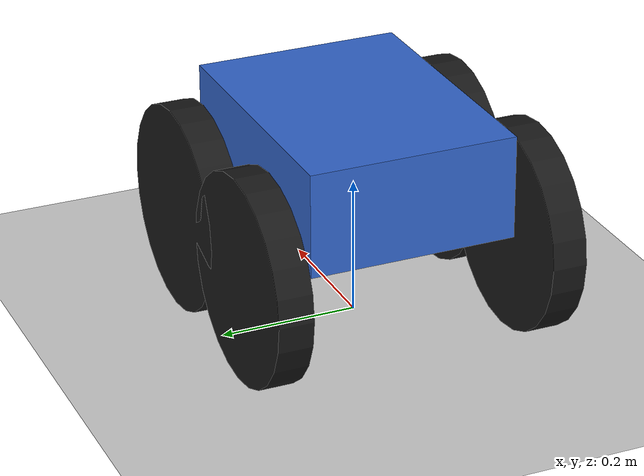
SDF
<sdf version="1.9">
 <world name="walk_across_then_approach">
  <include><uri>model://rover</uri><pose>0 0 0.15 0 0 0</pose></include>
  <physics type="ode">
   <max_step_size>0.004</max_step_size>
   <real_time_factor>1.0</real_time_factor>
   <real_time_update_rate>250</real_time_update_rate>
  </physics>
  <plugin name="gz::sim::systems::Physics" filename="gz-sim-physics-system"/>
  <plugin name="gz::sim::systems::UserCommands" filename="gz-sim-user-commands-system"/>
  <plugin name="gz::sim::systems::SceneBroadcaster" filename="gz-sim-scene-broadcaster-system"/>
  <plugin name="gz::sim::systems::Contact" filename="gz-sim-contact-system"/>
  <plugin name="gz::sim::systems::Sensors" filename="gz-sim-sensors-system">
   <render_engine>ogre2</render_engine>
  </plugin>
  <gravity>0 0 -9.8</gravity>
  <scene>
   <grid>false</grid>
   <ambient>0.4 0.4 0.4 1</ambient>
   <background>0.7 0.7 0.7 1</background>
   <shadows>true</shadows>
  </scene>
  <model name="ground_plane">
   <static>true</static>
   <link name="link">
    <collision name="collision">
     <geometry><plane><normal>0 0 1</normal><size>1 1</size></plane></geometry>
    </collision>
    <visual name="visual">
     <geometry><plane><normal>0 0 1</normal><size>500 500</size></plane></geometry>
     <material>
      <ambient>0.8 0.8 0.8 1</ambient>
      <diffuse>0.8 0.8 0.8 1</diffuse>
      <specular>0.8 0.8 0.8 1</specular>
     </material>
    </visual>
    <inertial>
     <mass>1</mass>
     <inertia><ixx>1</ixx><ixy>0</ixy><ixz>0</ixz><iyy>1</iyy><iyz>0</iyz><izz>1</izz></inertia>
    </inertial>
   </link>
  </model>
  <light name="sunUTC" type="directional">
   <pose>0 0 500 0 0 0</pose>
   <intensity>1</intensity>
   <direction>0.001 0.625 -0.78</direction>
   <diffuse>0.904 0.904 0.904 1</diffuse>
   <specular>0.271 0.271 0.271 1</specular>
   <attenuation><range>2000</range><linear>0</linear><constant>1</constant><quadratic>0</quadratic></attenuation>
   <spot><inner_angle>0</inner_angle><outer_angle>0</outer_angle><falloff>0</falloff></spot>
  </light>
  <spherical_coordinates>
   <surface_model>EARTH_WGS84</surface_model>
   <world_frame_orientation>ENU</world_frame_orientation>
   <latitude_deg>47.397971057728974</latitude_deg>
   <longitude_deg>8.546163739800146</longitude_deg>
   <elevation>0</elevation>
  </spherical_coordinates>
 </world>
</sdf>

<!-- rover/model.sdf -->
<sdf version="1.9">
  <model name="rover">
    <pose>0 0 0.15 0 0 0</pose>
    <self_collide>false</self_collide>

    <link name="chassis">
      <pose>0 0 0.10 0 0 0</pose>
      <inertial>
        <mass>5.0</mass>
        <inertia>
          <ixx>0.05</ixx><ixy>0</ixy><ixz>0</ixz>
          <iyy>0.10</iyy><iyz>0</iyz>
          <izz>0.12</izz>
        </inertia>
      </inertial>
      <visual name="visual">
        <geometry><box><size>0.40 0.30 0.15</size></box></geometry>
        <material>
          <ambient>0.2 0.4 0.8 1</ambient>
          <diffuse>0.2 0.4 0.8 1</diffuse>
        </material>
      </visual>
      <collision name="collision">
        <geometry><box><size>0.40 0.30 0.15</size></box></geometry>
      </collision>
    </link>

    <link name="camera_link">
      <pose>0.20 0 0.20 0 0 0</pose>
      <inertial><mass>0.01</mass>
        <inertia><ixx>1e-5</ixx><ixy>0</ixy><ixz>0</ixz>
                 <iyy>1e-5</iyy><iyz>0</iyz>
                 <izz>1e-5</izz></inertia>
      </inertial>
      <sensor name="camera" type="camera">
        <topic>/camera</topic>
        <gz_frame_id>camera_link</gz_frame_id>
        <pose>0 0 0 0 0 0</pose>
        <camera>
          <horizontal_fov>1.152</horizontal_fov>
          <image><width>1280</width><height>720</height></image>
          <clip><near>0.1</near><far>3000</far></clip>
        </camera>
        <always_on>1</always_on>
        <update_rate>30</update_rate>
        <visualize>true</visualize>
      </sensor>
    </link>
    <joint name="camera_joint" type="fixed">
      <parent>chassis</parent>
      <child>camera_link</child>
    </joint>

    <link name="left_wheel">
      <pose>0.12 0.20 0 -1.5708 0 0</pose>
      <inertial><mass>0.5</mass>
        <inertia><ixx>0.001</ixx><ixy>0</ixy><ixz>0</ixz>
                 <iyy>0.001</iyy><iyz>0</iyz>
                 <izz>0.001</izz></inertia>
      </inertial>
      <visual name="visual">
        <geometry><cylinder><radius>0.15</radius><length>0.05</length></cylinder></geometry>
        <material><ambient>0.1 0.1 0.1 1</ambient><diffuse>0.1 0.1 0.1 1</diffuse></material>
      </visual>
      <collision name="collision">
        <geometry><cylinder><radius>0.15</radius><length>0.05</length></cylinder></geometry>
        <surface><friction><ode><mu>1.0</mu><mu2>1.0</mu2></ode></friction></surface>
      </collision>
    </link>
    <link name="right_wheel">
      <pose>0.12 -0.20 0 -1.5708 0 0</pose>
      <inertial><mass>0.5</mass>
        <inertia><ixx>0.001</ixx><ixy>0</ixy><ixz>0</ixz>
                 <iyy>0.001</iyy><iyz>0</iyz>
                 <izz>0.001</izz></inertia>
      </inertial>
      <visual name="visual">
        <geometry><cylinder><radius>0.15</radius><length>0.05</length></cylinder></geometry>
        <material><ambient>0.1 0.1 0.1 1</ambient><diffuse>0.1 0.1 0.1 1</diffuse></material>
      </visual>
      <collision name="collision">
        <geometry><cylinder><radius>0.15</radius><length>0.05</length></cylinder></geometry>
        <surface><friction><ode><mu>1.0</mu><mu2>1.0</mu2></ode></friction></surface>
      </collision>
    </link>

    <link name="left_rear_wheel">
      <pose>-0.12 0.20 0 -1.5708 0 0</pose>
      <inertial><mass>0.5</mass>
        <inertia><ixx>0.001</ixx><ixy>0</ixy><ixz>0</ixz>
                 <iyy>0.001</iyy><iyz>0</iyz>
                 <izz>0.001</izz></inertia>
      </inertial>
      <visual name="visual">
        <geometry><cylinder><radius>0.15</radius><length>0.05</length></cylinder></geometry>
        <material><ambient>0.1 0.1 0.1 1</ambient><diffuse>0.1 0.1 0.1 1</diffuse></material>
      </visual>
      <collision name="collision">
        <geometry><cylinder><radius>0.15</radius><length>0.05</length></cylinder></geometry>
        <surface><friction><ode><mu>1.0</mu><mu2>0.2</mu2></ode></friction></surface>
      </collision>
    </link>
    <link name="right_rear_wheel">
      <pose>-0.12 -0.20 0 -1.5708 0 0</pose>
      <inertial><mass>0.5</mass>
        <inertia><ixx>0.001</ixx><ixy>0</ixy><ixz>0</ixz>
                 <iyy>0.001</iyy><iyz>0</iyz>
                 <izz>0.001</izz></inertia>
      </inertial>
      <visual name="visual">
        <geometry><cylinder><radius>0.15</radius><length>0.05</length></cylinder></geometry>
        <material><ambient>0.1 0.1 0.1 1</ambient><diffuse>0.1 0.1 0.1 1</diffuse></material>
      </visual>
      <collision name="collision">
        <geometry><cylinder><radius>0.15</radius><length>0.05</length></cylinder></geometry>
        <surface><friction><ode><mu>1.0</mu><mu2>0.2</mu2></ode></friction></surface>
      </collision>
    </link>

    <joint name="left_wheel_joint" type="revolute">
      <parent>chassis</parent><child>left_wheel</child>
      <axis>
        <xyz>0 0 1</xyz>
        <limit><lower>-1.79769e+308</lower><upper>1.79769e+308</upper></limit>
      </axis>
    </joint>
    <joint name="right_wheel_joint" type="revolute">
      <parent>chassis</parent><child>right_wheel</child>
      <axis>
        <xyz>0 0 1</xyz>
        <limit><lower>-1.79769e+308</lower><upper>1.79769e+308</upper></limit>
      </axis>
    </joint>
    <joint name="left_rear_wheel_joint" type="revolute">
      <parent>chassis</parent><child>left_rear_wheel</child>
      <axis>
        <xyz>0 0 1</xyz>
        <limit><lower>-1.79769e+308</lower><upper>1.79769e+308</upper></limit>
      </axis>
    </joint>
    <joint name="right_rear_wheel_joint" type="revolute">
      <parent>chassis</parent><child>right_rear_wheel</child>
      <axis>
        <xyz>0 0 1</xyz>
        <limit><lower>-1.79769e+308</lower><upper>1.79769e+308</upper></limit>
      </axis>
    </joint>

    <plugin filename="gz-sim-diff-drive-system"
            name="gz::sim::systems::DiffDrive">
      <left_joint>left_wheel_joint</left_joint>
      <right_joint>right_wheel_joint</right_joint>
      <wheel_separation>0.40</wheel_separation>
      <wheel_radius>0.15</wheel_radius>
      <!-- RSIM-02: override default /model/rover/cmd_vel -> /cmd_vel -->
      <topic>cmd_vel</topic>
      <odom_publish_frequency>10</odom_publish_frequency>
      <!-- Conservative caps; rover-safe values.  Tuning belongs in
           configs/rover_simulation.json which Phase 6 RINT-01 will add. -->
      <max_linear_velocity>1.0</max_linear_velocity>
      <min_linear_velocity>-0.5</min_linear_velocity>
      <max_angular_velocity>2.0</max_angular_velocity>
      <min_angular_velocity>-2.0</min_angular_velocity>
      <max_linear_acceleration>2.0</max_linear_acceleration>
      <min_linear_acceleration>-2.0</min_linear_acceleration>
      <max_angular_acceleration>4.0</max_angular_acceleration>
      <min_angular_acceleration>-4.0</min_angular_acceleration>
    </plugin>
  </model>
</sdf>
